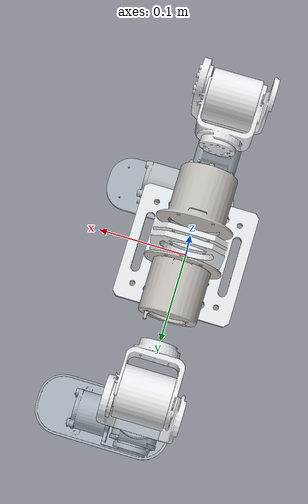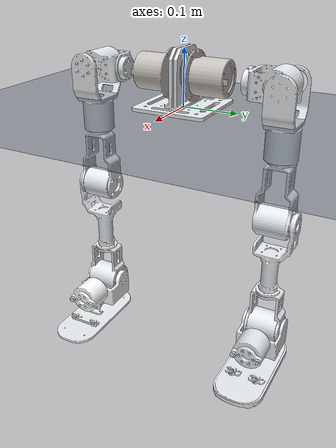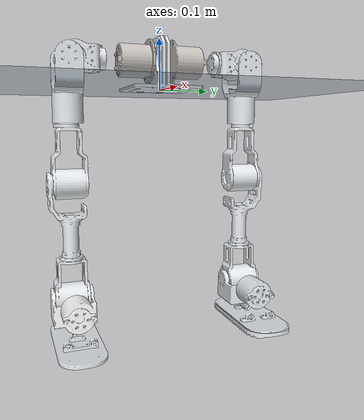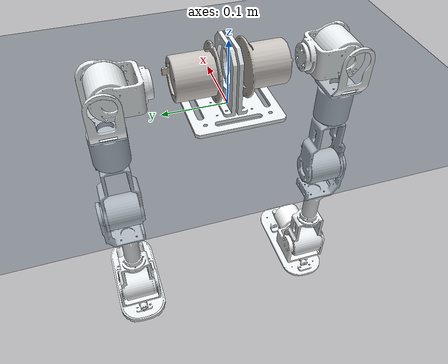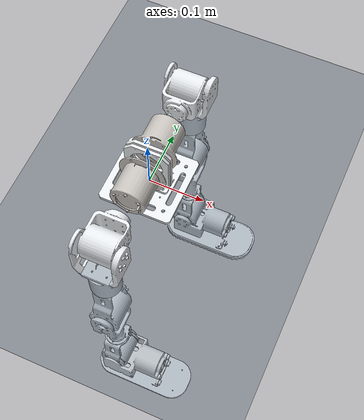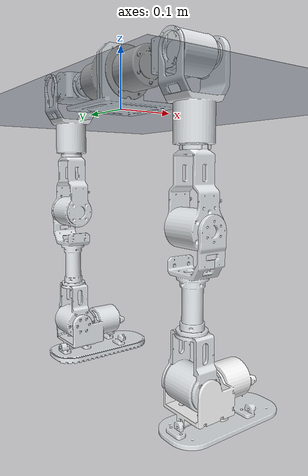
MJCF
<mujoco model="legs_URDF">
  <compiler angle="radian" meshdir="../meshes/" />
  <default>
    <default class="visual">
      <geom type="mesh" contype="0" conaffinity="0" group="1"/>
    </default>
    <default class="collision">
      <geom type="capsule" contype="1" conaffinity="1" group="3" rgba="0.9373 0.2667 0.2667 1"/>
    </default>
  </default>
  <asset>
    <mesh name="base_link" file="base_link.STL" />
    <mesh name="Link_R0" file="Link_R0.STL" />
    <mesh name="Link_R1" file="Link_R1.STL" />
    <mesh name="Link_R2" file="Link_R2.STL" />
    <mesh name="Link_R3" file="Link_R3.STL" />
    <mesh name="Link_R4" file="Link_R4.STL" />
    <mesh name="Link_R5" file="Link_R5.STL" />
    <mesh name="Link_R6" file="Link_R6.STL" />
    <mesh name="Link_L0" file="Link_L0.STL" />
    <mesh name="Link_L1" file="Link_L1.STL" />
    <mesh name="Link_L2" file="Link_L2.STL" />
    <mesh name="Link_L3" file="Link_L3.STL" />
    <mesh name="Link_L4" file="Link_L4.STL" />
    <mesh name="Link_L5" file="Link_L5.STL" />
    <mesh name="Link_L6" file="Link_L6.STL" />
    <material name="base_mat" rgba="0.898 0.9137 0.9255 1" specular="0" />
    <material name="Link_R0_mat" rgba="0.7725 0.7529 0.7333 1" specular="0" />
    <material name="Link_R1_mat" rgba="0.898 0.9137 0.9255 1" specular="0" />
    <material name="Link_R2_mat" rgba="0.898 0.9137 0.9255 1" specular="0" />
    <material name="Link_R3_mat" rgba="0.898 0.9137 0.9255 1" specular="0" />
    <material name="Link_R4_mat" rgba="0.898 0.9137 0.9255 1" specular="0" />
    <material name="Link_R5_mat" rgba="1 1 1 1" specular="0" />
    <material name="Link_R6_mat" rgba="0.898 0.9137 0.9255 1" specular="0" />
    <material name="Link_L0_mat" rgba="0.7725 0.7529 0.7333 1" specular="0" />
    <material name="Link_L1_mat" rgba="0.898 0.9137 0.9255 1" specular="0" />
    <material name="Link_L2_mat" rgba="0.898 0.9137 0.9255 1" specular="0" />
    <material name="Link_L3_mat" rgba="0.898 0.9137 0.9255 1" specular="0" />
    <material name="Link_L4_mat" rgba="0.898 0.9137 0.9255 1" specular="0" />
    <material name="Link_L5_mat" rgba="0.898 0.9137 0.9255 1" specular="0" />
    <material name="Link_L6_mat" rgba="0.898 0.9137 0.9255 1" specular="0" />
    <texture name="texplane" type="2d" builtin="checker" rgb1=".2 .3 .4" rgb2=".1 0.15 0.2"
          width="512" height="512" mark="cross" markrgb=".8 .8 .8"/>
    <material name="matplane" reflectance="0." texture="texplane" texrepeat="1 1" texuniform="true"/>
  </asset>

  <worldbody>
    <light directional="true" diffuse=".4 .4 .4" specular="0.1 0.1 0.1" pos="0 0 5.0" dir="0 0 -1" castshadow="false"/>
    <light directional="true" diffuse=".6 .6 .6" specular="0.2 0.2 0.2" pos="0 0 4" dir="0 0 -1"/>
    <geom name="ground" type="plane" size="0 0 1" pos="0.001 0 0" quat="1 0 0 0" material="matplane" condim="1" conaffinity='15'/>
    <body name="base" pos="0 0 0">
      <freejoint/>
      <site name="imu" pos="0 0 0" quat="1 0 0 0" group="3"/>
      <inertial pos="0 0 0.0074869" mass="0.6188619" diaginertia="0.0013749 0.0014718 0.0025168"/>
      <geom class="visual" material="base_mat" mesh="base_link" />
      <geom class="collision" type="box" pos="0 0 0.03" size="0.09 0.09 0.04" />
      <body name="Link_R0" pos="0 -0.021 0.055">
        <inertial pos="0.0000344 -0.0297324 0.0000527" mass="0.7356663" fullinertia="0.0004923 0.0004979 0.0005018 0.000001 0 -0.000001"/>
        <geom class="visual" material="Link_R0_mat" mesh="Link_R0" />
        <body name="Link_R1" pos="0 -0.06025 0">
          <joint name="joint_R1" type="hinge" axis="0 1 0" limited="true" range="-1.05 1.05" damping="0" frictionloss="0"/>
          <inertial pos="-0.0013788 -0.0795199 0.0000709" mass="0.5530088" fullinertia="0.0002976 0.0002785 0.0003644 -0.0000239 0.0000003 0"/>
          <geom class="visual" material="Link_R1_mat" mesh="Link_R1" />
          <geom class="collision" pos="0 -0.1 0" quat="0.5 -0.5 -0.5 0.5" size="0.04 0.01" />
          <body name="Link_R2" pos="0 -0.0987 0">
            <joint name="joint_R2" type="hinge" axis="1 0 0" limited="true" range="-1.05 0.26" damping="0" frictionloss="0"/>
            <inertial pos="0.0045774 0 -0.0743865" mass="0.5459822" fullinertia="0.0003158 0.0003989 0.0003074 0 -0.0000331 0"/>
            <geom class="visual" material="Link_R2_mat" mesh="Link_R2" />
            <geom class="collision" pos="0 0 -0.1" size="0.04 0.04" />
            <body name="Link_R3" pos="0 0 -0.1215">
              <joint name="joint_R3" type="hinge" axis="0 0 1" limited="true" range="-1 1" damping="0" frictionloss="0"/>
              <inertial pos="0.0000005 0.0001085 -0.0958044" mass="0.5207862" fullinertia="0.0004243 0.0003483 0.0002701 0 0 0.0000153"/>
              <geom class="visual" material="Link_R3_mat" mesh="Link_R3" />
              <geom class="collision" pos="0 0 -0.1" quat="0.7071068 -0.7071068 0 0" size="0.04 0.01" />
              <body name="Link_R4" pos="0 0 -0.112">
                <joint name="joint_R4" type="hinge" axis="0 1 0" limited="true" range="0 1.92" damping="0" frictionloss="0"/>
                <inertial pos="-0.0000005 -0.002464 -0.1405535" mass="0.8551582" fullinertia="0.0005475 0.0004903 0.000386 0 0 0.0000278"/>
                <geom class="visual" material="Link_R4_mat" mesh="Link_R4" />
                <geom class="collision" pos="0 0 -0.14" size="0.04 0.06" />
                <body name="Link_R5" pos="0 0 -0.221">
                  <joint name="joint_R5" type="hinge" axis="0 1 0" limited="true" range="-0.52 0.52" damping="0" frictionloss="0"/>
                  <inertial pos="0.0605483 0.0029049 -0.0030212" mass="0.4048744" fullinertia="0.0001794 0.0001738 0.0001658 0.0000034 -0.0000096 -0.000007"/>
                  <geom class="visual" material="Link_R5_mat" mesh="Link_R5" />
                  <body name="Link_R6" pos="0 0 -0.055093">
                    <joint name="joint_R6" type="hinge" axis="1 0 0" limited="true" range="-0.35 0.35" damping="0" frictionloss="0"/>
                    <inertial pos="0.0523825 0.0000146 -0.0056262" mass="0.3002968" fullinertia="0.0001474 0.0007728 0.0009173 0 -0.0000001 0"/>
                    <geom class="visual" material="Link_R6_mat" mesh="Link_R6" />
                    <geom class="collision" fromto="-0.04 0.03 -0.0015 0.14 0.03 -0.0015" size="0.012" />
                    <geom class="collision" fromto="-0.04 0 -0.0015 0.14 0 -0.0015" size="0.012" />
                    <geom class="collision" fromto="-0.04 -0.03 -0.0015 0.14 -0.03 -0.0015" size="0.012" />
                  </body>
                </body>
              </body>
            </body>
          </body>
        </body>
      </body>
      <body name="Link_L0" pos="0 0.021 0.055">
        <inertial pos="0.0000344 0.0286962 -0.0000527" mass="0.7356663" fullinertia="0.0004923 0.0004979 0.0005018 -0.000001 0 -0.000001"/>
        <geom class="visual" material="Link_L0_mat" mesh="Link_L0" />
        <body name="Link_L1" pos="0 0.06025 0">
          <joint name="joint_L1" type="hinge" axis="0 1 0" limited="true" range="-1.05 1.05" damping="0" frictionloss="0"/>
          <inertial pos="-0.0014478 0.0795199 0.0000709" mass="0.5530088" fullinertia="0.0002976 0.0002785 0.0003644 0.0000239 0.0000003 0"/>
          <geom class="visual" material="Link_L1_mat" mesh="Link_L1" />
          <geom class="collision" pos="0 0.1 0" quat="0.7071068 0 0.7071068 0" size="0.04 0.01" />
          <body name="Link_L2" pos="0 0.0987 0">
            <joint name="joint_L2" type="hinge" axis="1 0 0" limited="true" range="-0.26 1.05" damping="0" frictionloss="0"/>
            <inertial pos="0.0044774 0 -0.0743865" mass="0.5459822" fullinertia="0.0003158 0.0003989 0.0003074 0 -0.0000331 0"/>
            <geom class="visual" material="Link_L2_mat" mesh="Link_L2" />
            <geom class="collision" pos="0 0 -0.1" size="0.04 0.04" />
            <body name="Link_L3" pos="-0.0001 0 -0.1215">
              <joint name="joint_L3" type="hinge" axis="0 0 1" limited="true" range="-1 1" damping="0" frictionloss="0"/>
              <inertial pos="0 -0.0001081 -0.0958044" mass="0.5207862" fullinertia="0.0004243 0.0003483 0.0002701 0 0 -0.0000153"/>
              <geom class="visual" material="Link_L3_mat" mesh="Link_L3" />
              <geom class="collision" pos="0 0 -0.1" quat="0.7071068 -0.7071068 0 0" size="0.04 0.01" />
              <body name="Link_L4" pos="0 0 -0.112">
                <joint name="joint_L4" type="hinge" axis="0 1 0" limited="true" range="0 1.92" damping="0" frictionloss="0"/>
                <inertial pos="0.0000002 0.0024635 -0.1405535" mass="0.8551582" fullinertia="0.0005475 0.0004903 0.000386 0 0 -0.0000278"/>
                <geom class="visual" material="Link_L4_mat" mesh="Link_L4" />
                <geom class="collision" pos="0 0 -0.14" size="0.04 0.06" />
                <body name="Link_L5" pos="0 0 -0.221">
                  <joint name="joint_L5" type="hinge" axis="0 1 0" limited="true" range="-0.52 0.52" damping="0" frictionloss="0"/>
                  <inertial pos="0.0605625 -0.0035236 -0.0030213" mass="0.4048746" fullinertia="0.0001794 0.0001738 0.0001658 -0.0000035 -0.0000096 0.000007"/>
                  <geom class="visual" material="Link_L5_mat" mesh="Link_L5" />
                  <body name="Link_L6" pos="0.0001007 0 -0.055093">
                    <joint name="joint_L6" type="hinge" axis="1 0 0" limited="true" range="-0.35 0.35" damping="0" frictionloss="0"/>
                    <inertial pos="0.0522817 -0.000739 -0.0056262" mass="0.3002968" fullinertia="0.0001474 0.0007728 0.0009173 0 -0.0000001 0"/>
                    <geom class="visual" material="Link_L6_mat" mesh="Link_L6" />
                    <geom class="collision" fromto="-0.04 0.03 -0.0015 0.14 0.03 -0.0015" size="0.012" />
                    <geom class="collision" fromto="-0.04 0 -0.0015 0.14 0 -0.0015" size="0.012" />
                    <geom class="collision" fromto="-0.04 -0.03 -0.0015 0.14 -0.03 -0.0015" size="0.012" />
                  </body>
                </body>
              </body>
            </body>
          </body>
        </body>
      </body>
    </body>
  </worldbody>
  <actuator>
    <position name="joint_R1_servo" joint="joint_R1" kp="13.5" forcelimited="true" forcerange="-27 27" />
    <position name="joint_R2_servo" joint="joint_R2" kp="13.5" forcelimited="true" forcerange="-27 27" />
    <position name="joint_R3_servo" joint="joint_R3" kp="13.5" forcelimited="true" forcerange="-27 27" />
    <position name="joint_R4_servo" joint="joint_R4" kp="13.5" forcelimited="true" forcerange="-27 27" />
    <position name="joint_R5_servo" joint="joint_R5" kp="3.5" forcelimited="true" forcerange="-7 7" />
    <position name="joint_R6_servo" joint="joint_R6" kp="3.5" forcelimited="true" forcerange="-7 7" />
    <position name="joint_L1_servo" joint="joint_L1" kp="13.5" forcelimited="true" forcerange="-27 27" />
    <position name="joint_L2_servo" joint="joint_L2" kp="13.5" forcelimited="true" forcerange="-27 27" />
    <position name="joint_L3_servo" joint="joint_L3" kp="13.5" forcelimited="true" forcerange="-27 27" />
    <position name="joint_L4_servo" joint="joint_L4" kp="13.5" forcelimited="true" forcerange="-27 27" />
    <position name="joint_L5_servo" joint="joint_L5" kp="3.5" forcelimited="true" forcerange="-7 7" />
    <position name="joint_L6_servo" joint="joint_L6" kp="3.5" forcelimited="true" forcerange="-7 7" />
  </actuator>
  <sensor>
    <framequat name="imu_quat" objtype="site" objname="imu"/>
    <gyro name="imu_gyro" site="imu"/>
    <accelerometer name="imu_acc" site="imu"/>
    <framepos name="frame_pos" objtype="site" objname="imu"/>
    <framelinvel name="frame_vel" objtype="site" objname="imu"/>
  </sensor>
</mujoco>
